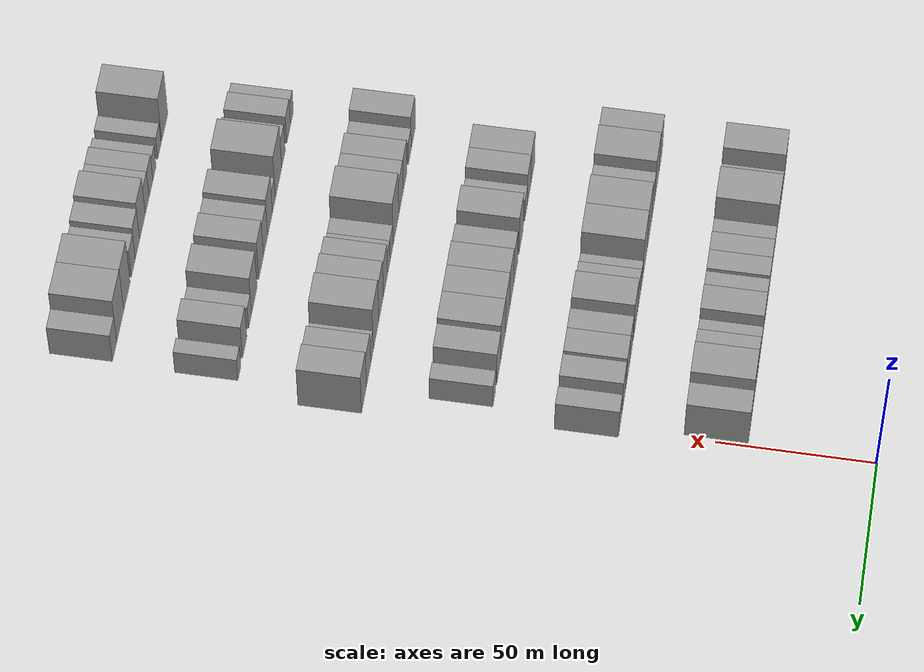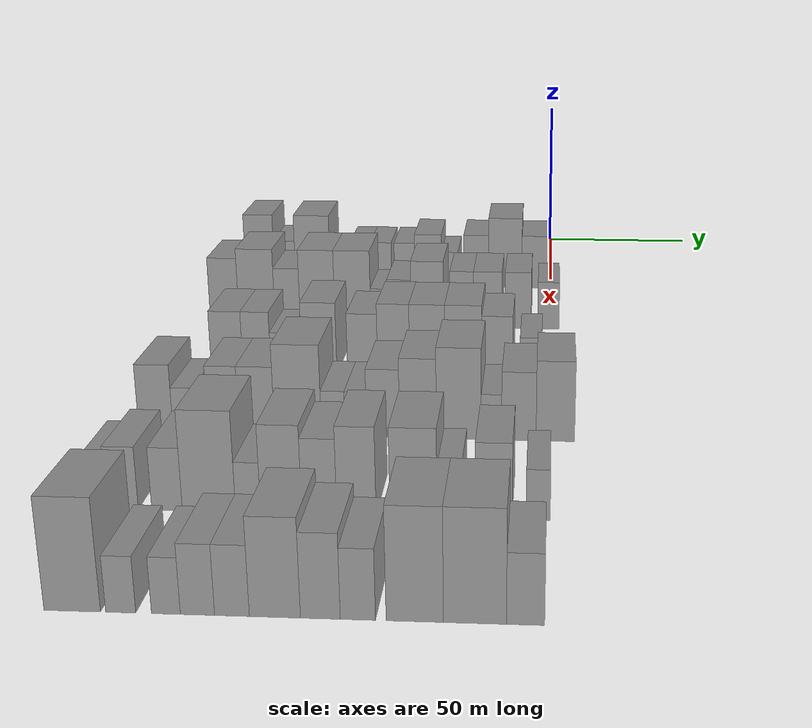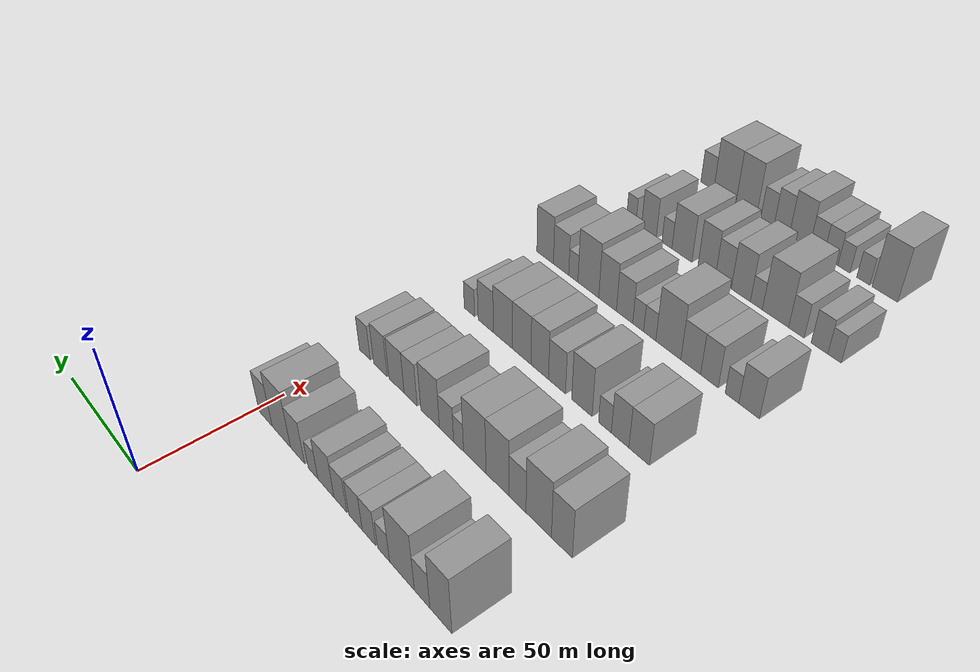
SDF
<sdf version="1.6">
 <world name="default">
  <model name="building_62">
   <static>1</static>
   <pose>50.0000 -98.3167 0 0.000000 0.000000 0.000000</pose>
   <link name="link">
    <pose>0 0 12.00 0 0 0</pose>
    <collision name="collision"><geometry><box><size>20.0000 9.8431 24.0000</size></box></geometry></collision>
    <visual name="visual">
     <cast_shadows>0</cast_shadows>
     <geometry><box><size>20.0000 9.8431 24.0000</size></box></geometry>
     <material>
      <script>
       <uri>model://grey_wall/materials/scripts</uri>
       <uri>model://grey_wall/materials/textures</uri>
       <name>vrc/grey_wall</name>
      </script>
     </material>
    </visual>
   </link>
  </model>
  <model name="building_63">
   <static>1</static>
   <pose>50.0000 -89.8145 0 0.000000 0.000000 0.000000</pose>
   <link name="link">
    <pose>0 0 7.50 0 0 0</pose>
    <collision name="collision"><geometry><box><size>20.0000 7.1614 15.0000</size></box></geometry></collision>
    <visual name="visual">
     <cast_shadows>0</cast_shadows>
     <geometry><box><size>20.0000 7.1614 15.0000</size></box></geometry>
     <material>
      <script>
       <uri>model://grey_wall/materials/scripts</uri>
       <uri>model://grey_wall/materials/textures</uri>
       <name>vrc/grey_wall</name>
      </script>
     </material>
    </visual>
   </link>
  </model>
  <model name="building_64">
   <static>1</static>
   <pose>50.0000 -80.2956 0 0.000000 0.000000 0.000000</pose>
   <link name="link">
    <pose>0 0 12.00 0 0 0</pose>
    <collision name="collision"><geometry><box><size>20.0000 11.8764 24.0000</size></box></geometry></collision>
    <visual name="visual">
     <cast_shadows>0</cast_shadows>
     <geometry><box><size>20.0000 11.8764 24.0000</size></box></geometry>
     <material>
      <script>
       <uri>model://grey_wall/materials/scripts</uri>
       <uri>model://grey_wall/materials/textures</uri>
       <name>vrc/grey_wall</name>
      </script>
     </material>
    </visual>
   </link>
  </model>
  <model name="building_65">
   <static>1</static>
   <pose>50.0000 -71.4141 0 0.000000 0.000000 0.000000</pose>
   <link name="link">
    <pose>0 0 6.00 0 0 0</pose>
    <collision name="collision"><geometry><box><size>20.0000 5.8865 12.0000</size></box></geometry></collision>
    <visual name="visual">
     <cast_shadows>0</cast_shadows>
     <geometry><box><size>20.0000 5.8865 12.0000</size></box></geometry>
     <material>
      <script>
       <uri>model://grey_wall/materials/scripts</uri>
       <uri>model://grey_wall/materials/textures</uri>
       <name>vrc/grey_wall</name>
      </script>
     </material>
    </visual>
   </link>
  </model>
  <model name="building_66">
   <static>1</static>
   <pose>50.0000 -64.0489 0 0.000000 0.000000 0.000000</pose>
   <link name="link">
    <pose>0 0 7.50 0 0 0</pose>
    <collision name="collision"><geometry><box><size>20.0000 6.8438 15.0000</size></box></geometry></collision>
    <visual name="visual">
     <cast_shadows>0</cast_shadows>
     <geometry><box><size>20.0000 6.8438 15.0000</size></box></geometry>
     <material>
      <script>
       <uri>model://grey_wall/materials/scripts</uri>
       <uri>model://grey_wall/materials/textures</uri>
       <name>vrc/grey_wall</name>
      </script>
     </material>
    </visual>
   </link>
  </model>
  <model name="building_67">
   <static>1</static>
   <pose>50.0000 -57.0790 0 0.000000 0.000000 0.000000</pose>
   <link name="link">
    <pose>0 0 7.50 0 0 0</pose>
    <collision name="collision"><geometry><box><size>20.0000 7.0960 15.0000</size></box></geometry></collision>
    <visual name="visual">
     <cast_shadows>0</cast_shadows>
     <geometry><box><size>20.0000 7.0960 15.0000</size></box></geometry>
     <material>
      <script>
       <uri>model://grey_wall/materials/scripts</uri>
       <uri>model://grey_wall/materials/textures</uri>
       <name>vrc/grey_wall</name>
      </script>
     </material>
    </visual>
   </link>
  </model>
  <model name="building_68">
   <static>1</static>
   <pose>50.0000 -49.0764 0 0.000000 0.000000 0.000000</pose>
   <link name="link">
    <pose>0 0 7.50 0 0 0</pose>
    <collision name="collision"><geometry><box><size>20.0000 6.9093 15.0000</size></box></geometry></collision>
    <visual name="visual">
     <cast_shadows>0</cast_shadows>
     <geometry><box><size>20.0000 6.9093 15.0000</size></box></geometry>
     <material>
      <script>
       <uri>model://grey_wall/materials/scripts</uri>
       <uri>model://grey_wall/materials/textures</uri>
       <name>vrc/grey_wall</name>
      </script>
     </material>
    </visual>
   </link>
  </model>
  <model name="building_69">
   <static>1</static>
   <pose>50.0000 -41.1456 0 0.000000 0.000000 0.000000</pose>
   <link name="link">
    <pose>0 0 9.00 0 0 0</pose>
    <collision name="collision"><geometry><box><size>20.0000 8.9523 18.0000</size></box></geometry></collision>
    <visual name="visual">
     <cast_shadows>0</cast_shadows>
     <geometry><box><size>20.0000 8.9523 18.0000</size></box></geometry>
     <material>
      <script>
       <uri>model://grey_wall/materials/scripts</uri>
       <uri>model://grey_wall/materials/textures</uri>
       <name>vrc/grey_wall</name>
      </script>
     </material>
    </visual>
   </link>
  </model>
  <model name="building_70">
   <static>1</static>
   <pose>50.0000 -33.8933 0 0.000000 0.000000 0.000000</pose>
   <link name="link">
    <pose>0 0 6.00 0 0 0</pose>
    <collision name="collision"><geometry><box><size>20.0000 5.5524 12.0000</size></box></geometry></collision>
    <visual name="visual">
     <cast_shadows>0</cast_shadows>
     <geometry><box><size>20.0000 5.5524 12.0000</size></box></geometry>
     <material>
      <script>
       <uri>model://grey_wall/materials/scripts</uri>
       <uri>model://grey_wall/materials/textures</uri>
       <name>vrc/grey_wall</name>
      </script>
     </material>
    </visual>
   </link>
  </model>
  <model name="building_71">
   <static>1</static>
   <pose>50.0000 -24.9443 0 0.000000 0.000000 0.000000</pose>
   <link name="link">
    <pose>0 0 9.00 0 0 0</pose>
    <collision name="collision"><geometry><box><size>20.0000 8.3454 18.0000</size></box></geometry></collision>
    <visual name="visual">
     <cast_shadows>0</cast_shadows>
     <geometry><box><size>20.0000 8.3454 18.0000</size></box></geometry>
     <material>
      <script>
       <uri>model://grey_wall/materials/scripts</uri>
       <uri>model://grey_wall/materials/textures</uri>
       <name>vrc/grey_wall</name>
      </script>
     </material>
    </visual>
   </link>
  </model>
  <model name="building_72">
   <static>1</static>
   <pose>50.0000 -15.2040 0 0.000000 0.000000 0.000000</pose>
   <link name="link">
    <pose>0 0 12.00 0 0 0</pose>
    <collision name="collision"><geometry><box><size>20.0000 11.1353 24.0000</size></box></geometry></collision>
    <visual name="visual">
     <cast_shadows>0</cast_shadows>
     <geometry><box><size>20.0000 11.1353 24.0000</size></box></geometry>
     <material>
      <script>
       <uri>model://grey_wall/materials/scripts</uri>
       <uri>model://grey_wall/materials/textures</uri>
       <name>vrc/grey_wall</name>
      </script>
     </material>
    </visual>
   </link>
  </model>
  <model name="building_73">
   <static>1</static>
   <pose>50.0000 -5.4951 0 0.000000 0.000000 0.000000</pose>
   <link name="link">
    <pose>0 0 9.00 0 0 0</pose>
    <collision name="collision"><geometry><box><size>20.0000 8.2823 18.0000</size></box></geometry></collision>
    <visual name="visual">
     <cast_shadows>0</cast_shadows>
     <geometry><box><size>20.0000 8.2823 18.0000</size></box></geometry>
     <material>
      <script>
       <uri>model://grey_wall/materials/scripts</uri>
       <uri>model://grey_wall/materials/textures</uri>
       <name>vrc/grey_wall</name>
      </script>
     </material>
    </visual>
   </link>
  </model>
  <model name="building_183">
   <static>1</static>
   <pose>90.0000 -100.7036 0 0.000000 0.000000 0.000000</pose>
   <link name="link">
    <pose>0 0 10.50 0 0 0</pose>
    <collision name="collision"><geometry><box><size>20.0000 8.9559 21.0000</size></box></geometry></collision>
    <visual name="visual">
     <cast_shadows>0</cast_shadows>
     <geometry><box><size>20.0000 8.9559 21.0000</size></box></geometry>
     <material>
      <script>
       <uri>model://grey_wall/materials/scripts</uri>
       <uri>model://grey_wall/materials/textures</uri>
       <name>vrc/grey_wall</name>
      </script>
     </material>
    </visual>
   </link>
  </model>
  <model name="building_184">
   <static>1</static>
   <pose>90.0000 -90.5983 0 0.000000 0.000000 0.000000</pose>
   <link name="link">
    <pose>0 0 12.00 0 0 0</pose>
    <collision name="collision"><geometry><box><size>20.0000 11.2547 24.0000</size></box></geometry></collision>
    <visual name="visual">
     <cast_shadows>0</cast_shadows>
     <geometry><box><size>20.0000 11.2547 24.0000</size></box></geometry>
     <material>
      <script>
       <uri>model://grey_wall/materials/scripts</uri>
       <uri>model://grey_wall/materials/textures</uri>
       <name>vrc/grey_wall</name>
      </script>
     </material>
    </visual>
   </link>
  </model>
  <model name="building_185">
   <static>1</static>
   <pose>90.0000 -81.0450 0 0.000000 0.000000 0.000000</pose>
   <link name="link">
    <pose>0 0 9.00 0 0 0</pose>
    <collision name="collision"><geometry><box><size>20.0000 7.8520 18.0000</size></box></geometry></collision>
    <visual name="visual">
     <cast_shadows>0</cast_shadows>
     <geometry><box><size>20.0000 7.8520 18.0000</size></box></geometry>
     <material>
      <script>
       <uri>model://grey_wall/materials/scripts</uri>
       <uri>model://grey_wall/materials/textures</uri>
       <name>vrc/grey_wall</name>
      </script>
     </material>
    </visual>
   </link>
  </model>
  <model name="building_186">
   <static>1</static>
   <pose>90.0000 -71.7139 0 0.000000 0.000000 0.000000</pose>
   <link name="link">
    <pose>0 0 12.00 0 0 0</pose>
    <collision name="collision"><geometry><box><size>20.0000 10.8101 24.0000</size></box></geometry></collision>
    <visual name="visual">
     <cast_shadows>0</cast_shadows>
     <geometry><box><size>20.0000 10.8101 24.0000</size></box></geometry>
     <material>
      <script>
       <uri>model://grey_wall/materials/scripts</uri>
       <uri>model://grey_wall/materials/textures</uri>
       <name>vrc/grey_wall</name>
      </script>
     </material>
    </visual>
   </link>
  </model>
  <model name="building_187">
   <static>1</static>
   <pose>90.0000 -60.7472 0 0.000000 0.000000 0.000000</pose>
   <link name="link">
    <pose>0 0 12.00 0 0 0</pose>
    <collision name="collision"><geometry><box><size>20.0000 11.1233 24.0000</size></box></geometry></collision>
    <visual name="visual">
     <cast_shadows>0</cast_shadows>
     <geometry><box><size>20.0000 11.1233 24.0000</size></box></geometry>
     <material>
      <script>
       <uri>model://grey_wall/materials/scripts</uri>
       <uri>model://grey_wall/materials/textures</uri>
       <name>vrc/grey_wall</name>
      </script>
     </material>
    </visual>
   </link>
  </model>
  <model name="building_188">
   <static>1</static>
   <pose>90.0000 -52.6502 0 0.000000 0.000000 0.000000</pose>
   <link name="link">
    <pose>0 0 6.00 0 0 0</pose>
    <collision name="collision"><geometry><box><size>20.0000 5.0707 12.0000</size></box></geometry></collision>
    <visual name="visual">
     <cast_shadows>0</cast_shadows>
     <geometry><box><size>20.0000 5.0707 12.0000</size></box></geometry>
     <material>
      <script>
       <uri>model://grey_wall/materials/scripts</uri>
       <uri>model://grey_wall/materials/textures</uri>
       <name>vrc/grey_wall</name>
      </script>
     </material>
    </visual>
   </link>
  </model>
  <model name="building_189">
   <static>1</static>
   <pose>90.0000 -46.4195 0 0.000000 0.000000 0.000000</pose>
   <link name="link">
    <pose>0 0 7.50 0 0 0</pose>
    <collision name="collision"><geometry><box><size>20.0000 7.3907 15.0000</size></box></geometry></collision>
    <visual name="visual">
     <cast_shadows>0</cast_shadows>
     <geometry><box><size>20.0000 7.3907 15.0000</size></box></geometry>
     <material>
      <script>
       <uri>model://grey_wall/materials/scripts</uri>
       <uri>model://grey_wall/materials/textures</uri>
       <name>vrc/grey_wall</name>
      </script>
     </material>
    </visual>
   </link>
  </model>
  <model name="building_190">
   <static>1</static>
   <pose>90.0000 -37.7463 0 0.000000 0.000000 0.000000</pose>
   <link name="link">
    <pose>0 0 10.50 0 0 0</pose>
    <collision name="collision"><geometry><box><size>20.0000 9.9557 21.0000</size></box></geometry></collision>
    <visual name="visual">
     <cast_shadows>0</cast_shadows>
     <geometry><box><size>20.0000 9.9557 21.0000</size></box></geometry>
     <material>
      <script>
       <uri>model://grey_wall/materials/scripts</uri>
       <uri>model://grey_wall/materials/textures</uri>
       <name>vrc/grey_wall</name>
      </script>
     </material>
    </visual>
   </link>
  </model>
  <model name="building_191">
   <static>1</static>
   <pose>90.0000 -27.1529 0 0.000000 0.000000 0.000000</pose>
   <link name="link">
    <pose>0 0 9.00 0 0 0</pose>
    <collision name="collision"><geometry><box><size>20.0000 7.2310 18.0000</size></box></geometry></collision>
    <visual name="visual">
     <cast_shadows>0</cast_shadows>
     <geometry><box><size>20.0000 7.2310 18.0000</size></box></geometry>
     <material>
      <script>
       <uri>model://grey_wall/materials/scripts</uri>
       <uri>model://grey_wall/materials/textures</uri>
       <name>vrc/grey_wall</name>
      </script>
     </material>
    </visual>
   </link>
  </model>
  <model name="building_192">
   <static>1</static>
   <pose>90.0000 -19.2279 0 0.000000 0.000000 0.000000</pose>
   <link name="link">
    <pose>0 0 9.00 0 0 0</pose>
    <collision name="collision"><geometry><box><size>20.0000 8.6189 18.0000</size></box></geometry></collision>
    <visual name="visual">
     <cast_shadows>0</cast_shadows>
     <geometry><box><size>20.0000 8.6189 18.0000</size></box></geometry>
     <material>
      <script>
       <uri>model://grey_wall/materials/scripts</uri>
       <uri>model://grey_wall/materials/textures</uri>
       <name>vrc/grey_wall</name>
      </script>
     </material>
    </visual>
   </link>
  </model>
  <model name="building_193">
   <static>1</static>
   <pose>90.0000 -9.9222 0 0.000000 0.000000 0.000000</pose>
   <link name="link">
    <pose>0 0 9.00 0 0 0</pose>
    <collision name="collision"><geometry><box><size>20.0000 7.9925 18.0000</size></box></geometry></collision>
    <visual name="visual">
     <cast_shadows>0</cast_shadows>
     <geometry><box><size>20.0000 7.9925 18.0000</size></box></geometry>
     <material>
      <script>
       <uri>model://grey_wall/materials/scripts</uri>
       <uri>model://grey_wall/materials/textures</uri>
       <name>vrc/grey_wall</name>
      </script>
     </material>
    </visual>
   </link>
  </model>
  <model name="building_194">
   <static>1</static>
   <pose>90.0000 -0.6601 0 0.000000 0.000000 0.000000</pose>
   <link name="link">
    <pose>0 0 7.50 0 0 0</pose>
    <collision name="collision"><geometry><box><size>20.0000 6.5317 15.0000</size></box></geometry></collision>
    <visual name="visual">
     <cast_shadows>0</cast_shadows>
     <geometry><box><size>20.0000 6.5317 15.0000</size></box></geometry>
     <material>
      <script>
       <uri>model://grey_wall/materials/scripts</uri>
       <uri>model://grey_wall/materials/textures</uri>
       <name>vrc/grey_wall</name>
      </script>
     </material>
    </visual>
   </link>
  </model>
  <model name="building_322">
   <static>1</static>
   <pose>130.0000 -90.1166 0 0.000000 0.000000 0.000000</pose>
   <link name="link">
    <pose>0 0 9.00 0 0 0</pose>
    <collision name="collision"><geometry><box><size>20.0000 8.9452 18.0000</size></box></geometry></collision>
    <visual name="visual">
     <cast_shadows>0</cast_shadows>
     <geometry><box><size>20.0000 8.9452 18.0000</size></box></geometry>
     <material>
      <script>
       <uri>model://grey_wall/materials/scripts</uri>
       <uri>model://grey_wall/materials/textures</uri>
       <name>vrc/grey_wall</name>
      </script>
     </material>
    </visual>
   </link>
  </model>
  <model name="building_323">
   <static>1</static>
   <pose>130.0000 -81.7169 0 0.000000 0.000000 0.000000</pose>
   <link name="link">
    <pose>0 0 9.00 0 0 0</pose>
    <collision name="collision"><geometry><box><size>20.0000 7.8541 18.0000</size></box></geometry></collision>
    <visual name="visual">
     <cast_shadows>0</cast_shadows>
     <geometry><box><size>20.0000 7.8541 18.0000</size></box></geometry>
     <material>
      <script>
       <uri>model://grey_wall/materials/scripts</uri>
       <uri>model://grey_wall/materials/textures</uri>
       <name>vrc/grey_wall</name>
      </script>
     </material>
    </visual>
   </link>
  </model>
  <model name="building_324">
   <static>1</static>
   <pose>130.0000 -74.8792 0 0.000000 0.000000 0.000000</pose>
   <link name="link">
    <pose>0 0 6.00 0 0 0</pose>
    <collision name="collision"><geometry><box><size>20.0000 5.8214 12.0000</size></box></geometry></collision>
    <visual name="visual">
     <cast_shadows>0</cast_shadows>
     <geometry><box><size>20.0000 5.8214 12.0000</size></box></geometry>
     <material>
      <script>
       <uri>model://grey_wall/materials/scripts</uri>
       <uri>model://grey_wall/materials/textures</uri>
       <name>vrc/grey_wall</name>
      </script>
     </material>
    </visual>
   </link>
  </model>
  <model name="building_325">
   <static>1</static>
   <pose>130.0000 -64.1117 0 0.000000 0.000000 0.000000</pose>
   <link name="link">
    <pose>0 0 10.50 0 0 0</pose>
    <collision name="collision"><geometry><box><size>20.0000 9.7136 21.0000</size></box></geometry></collision>
    <visual name="visual">
     <cast_shadows>0</cast_shadows>
     <geometry><box><size>20.0000 9.7136 21.0000</size></box></geometry>
     <material>
      <script>
       <uri>model://grey_wall/materials/scripts</uri>
       <uri>model://grey_wall/materials/textures</uri>
       <name>vrc/grey_wall</name>
      </script>
     </material>
    </visual>
   </link>
  </model>
  <model name="building_326">
   <static>1</static>
   <pose>130.0000 -52.0515 0 0.000000 0.000000 0.000000</pose>
   <link name="link">
    <pose>0 0 9.00 0 0 0</pose>
    <collision name="collision"><geometry><box><size>20.0000 8.4068 18.0000</size></box></geometry></collision>
    <visual name="visual">
     <cast_shadows>0</cast_shadows>
     <geometry><box><size>20.0000 8.4068 18.0000</size></box></geometry>
     <material>
      <script>
       <uri>model://grey_wall/materials/scripts</uri>
       <uri>model://grey_wall/materials/textures</uri>
       <name>vrc/grey_wall</name>
      </script>
     </material>
    </visual>
   </link>
  </model>
  <model name="building_327">
   <static>1</static>
   <pose>130.0000 -43.3922 0 0.000000 0.000000 0.000000</pose>
   <link name="link">
    <pose>0 0 10.50 0 0 0</pose>
    <collision name="collision"><geometry><box><size>20.0000 8.9118 21.0000</size></box></geometry></collision>
    <visual name="visual">
     <cast_shadows>0</cast_shadows>
     <geometry><box><size>20.0000 8.9118 21.0000</size></box></geometry>
     <material>
      <script>
       <uri>model://grey_wall/materials/scripts</uri>
       <uri>model://grey_wall/materials/textures</uri>
       <name>vrc/grey_wall</name>
      </script>
     </material>
    </visual>
   </link>
  </model>
  <model name="building_328">
   <static>1</static>
   <pose>130.0000 -34.0581 0 0.000000 0.000000 0.000000</pose>
   <link name="link">
    <pose>0 0 10.50 0 0 0</pose>
    <collision name="collision"><geometry><box><size>20.0000 9.7564 21.0000</size></box></geometry></collision>
    <visual name="visual">
     <cast_shadows>0</cast_shadows>
     <geometry><box><size>20.0000 9.7564 21.0000</size></box></geometry>
     <material>
      <script>
       <uri>model://grey_wall/materials/scripts</uri>
       <uri>model://grey_wall/materials/textures</uri>
       <name>vrc/grey_wall</name>
      </script>
     </material>
    </visual>
   </link>
  </model>
  <model name="building_329">
   <static>1</static>
   <pose>130.0000 -24.0826 0 0.000000 0.000000 0.000000</pose>
   <link name="link">
    <pose>0 0 10.50 0 0 0</pose>
    <collision name="collision"><geometry><box><size>20.0000 10.1948 21.0000</size></box></geometry></collision>
    <visual name="visual">
     <cast_shadows>0</cast_shadows>
     <geometry><box><size>20.0000 10.1948 21.0000</size></box></geometry>
     <material>
      <script>
       <uri>model://grey_wall/materials/scripts</uri>
       <uri>model://grey_wall/materials/textures</uri>
       <name>vrc/grey_wall</name>
      </script>
     </material>
    </visual>
   </link>
  </model>
  <model name="building_330">
   <static>1</static>
   <pose>130.0000 -14.7041 0 0.000000 0.000000 0.000000</pose>
   <link name="link">
    <pose>0 0 9.00 0 0 0</pose>
    <collision name="collision"><geometry><box><size>20.0000 8.5621 18.0000</size></box></geometry></collision>
    <visual name="visual">
     <cast_shadows>0</cast_shadows>
     <geometry><box><size>20.0000 8.5621 18.0000</size></box></geometry>
     <material>
      <script>
       <uri>model://grey_wall/materials/scripts</uri>
       <uri>model://grey_wall/materials/textures</uri>
       <name>vrc/grey_wall</name>
      </script>
     </material>
    </visual>
   </link>
  </model>
  <model name="building_331">
   <static>1</static>
   <pose>130.0000 -5.4510 0 0.000000 0.000000 0.000000</pose>
   <link name="link">
    <pose>0 0 6.00 0 0 0</pose>
    <collision name="collision"><geometry><box><size>20.0000 5.9441 12.0000</size></box></geometry></collision>
    <visual name="visual">
     <cast_shadows>0</cast_shadows>
     <geometry><box><size>20.0000 5.9441 12.0000</size></box></geometry>
     <material>
      <script>
       <uri>model://grey_wall/materials/scripts</uri>
       <uri>model://grey_wall/materials/textures</uri>
       <name>vrc/grey_wall</name>
      </script>
     </material>
    </visual>
   </link>
  </model>
  <model name="building_461">
   <static>1</static>
   <pose>170.0000 -98.3175 0 0.000000 0.000000 0.000000</pose>
   <link name="link">
    <pose>0 0 9.00 0 0 0</pose>
    <collision name="collision"><geometry><box><size>20.0000 8.6673 18.0000</size></box></geometry></collision>
    <visual name="visual">
     <cast_shadows>0</cast_shadows>
     <geometry><box><size>20.0000 8.6673 18.0000</size></box></geometry>
     <material>
      <script>
       <uri>model://grey_wall/materials/scripts</uri>
       <uri>model://grey_wall/materials/textures</uri>
       <name>vrc/grey_wall</name>
      </script>
     </material>
    </visual>
   </link>
  </model>
  <model name="building_462">
   <static>1</static>
   <pose>170.0000 -91.0740 0 0.000000 0.000000 0.000000</pose>
   <link name="link">
    <pose>0 0 6.00 0 0 0</pose>
    <collision name="collision"><geometry><box><size>20.0000 5.8197 12.0000</size></box></geometry></collision>
    <visual name="visual">
     <cast_shadows>0</cast_shadows>
     <geometry><box><size>20.0000 5.8197 12.0000</size></box></geometry>
     <material>
      <script>
       <uri>model://grey_wall/materials/scripts</uri>
       <uri>model://grey_wall/materials/textures</uri>
       <name>vrc/grey_wall</name>
      </script>
     </material>
    </visual>
   </link>
  </model>
  <model name="building_463">
   <static>1</static>
   <pose>170.0000 -81.2610 0 0.000000 0.000000 0.000000</pose>
   <link name="link">
    <pose>0 0 9.00 0 0 0</pose>
    <collision name="collision"><geometry><box><size>20.0000 7.8064 18.0000</size></box></geometry></collision>
    <visual name="visual">
     <cast_shadows>0</cast_shadows>
     <geometry><box><size>20.0000 7.8064 18.0000</size></box></geometry>
     <material>
      <script>
       <uri>model://grey_wall/materials/scripts</uri>
       <uri>model://grey_wall/materials/textures</uri>
       <name>vrc/grey_wall</name>
      </script>
     </material>
    </visual>
   </link>
  </model>
  <model name="building_464">
   <static>1</static>
   <pose>170.0000 -72.8683 0 0.000000 0.000000 0.000000</pose>
   <link name="link">
    <pose>0 0 9.00 0 0 0</pose>
    <collision name="collision"><geometry><box><size>20.0000 8.9790 18.0000</size></box></geometry></collision>
    <visual name="visual">
     <cast_shadows>0</cast_shadows>
     <geometry><box><size>20.0000 8.9790 18.0000</size></box></geometry>
     <material>
      <script>
       <uri>model://grey_wall/materials/scripts</uri>
       <uri>model://grey_wall/materials/textures</uri>
       <name>vrc/grey_wall</name>
      </script>
     </material>
    </visual>
   </link>
  </model>
  <model name="building_465">
   <static>1</static>
   <pose>170.0000 -62.5123 0 0.000000 0.000000 0.000000</pose>
   <link name="link">
    <pose>0 0 12.00 0 0 0</pose>
    <collision name="collision"><geometry><box><size>20.0000 11.7331 24.0000</size></box></geometry></collision>
    <visual name="visual">
     <cast_shadows>0</cast_shadows>
     <geometry><box><size>20.0000 11.7331 24.0000</size></box></geometry>
     <material>
      <script>
       <uri>model://grey_wall/materials/scripts</uri>
       <uri>model://grey_wall/materials/textures</uri>
       <name>vrc/grey_wall</name>
      </script>
     </material>
    </visual>
   </link>
  </model>
  <model name="building_466">
   <static>1</static>
   <pose>170.0000 -53.6849 0 0.000000 0.000000 0.000000</pose>
   <link name="link">
    <pose>0 0 6.00 0 0 0</pose>
    <collision name="collision"><geometry><box><size>20.0000 5.9217 12.0000</size></box></geometry></collision>
    <visual name="visual">
     <cast_shadows>0</cast_shadows>
     <geometry><box><size>20.0000 5.9217 12.0000</size></box></geometry>
     <material>
      <script>
       <uri>model://grey_wall/materials/scripts</uri>
       <uri>model://grey_wall/materials/textures</uri>
       <name>vrc/grey_wall</name>
      </script>
     </material>
    </visual>
   </link>
  </model>
  <model name="building_467">
   <static>1</static>
   <pose>170.0000 -48.0506 0 0.000000 0.000000 0.000000</pose>
   <link name="link">
    <pose>0 0 6.00 0 0 0</pose>
    <collision name="collision"><geometry><box><size>20.0000 5.3470 12.0000</size></box></geometry></collision>
    <visual name="visual">
     <cast_shadows>0</cast_shadows>
     <geometry><box><size>20.0000 5.3470 12.0000</size></box></geometry>
     <material>
      <script>
       <uri>model://grey_wall/materials/scripts</uri>
       <uri>model://grey_wall/materials/textures</uri>
       <name>vrc/grey_wall</name>
      </script>
     </material>
    </visual>
   </link>
  </model>
  <model name="building_468">
   <static>1</static>
   <pose>170.0000 -41.2796 0 0.000000 0.000000 0.000000</pose>
   <link name="link">
    <pose>0 0 9.00 0 0 0</pose>
    <collision name="collision"><geometry><box><size>20.0000 8.1951 18.0000</size></box></geometry></collision>
    <visual name="visual">
     <cast_shadows>0</cast_shadows>
     <geometry><box><size>20.0000 8.1951 18.0000</size></box></geometry>
     <material>
      <script>
       <uri>model://grey_wall/materials/scripts</uri>
       <uri>model://grey_wall/materials/textures</uri>
       <name>vrc/grey_wall</name>
      </script>
     </material>
    </visual>
   </link>
  </model>
  <model name="building_469">
   <static>1</static>
   <pose>170.0000 -32.6283 0 0.000000 0.000000 0.000000</pose>
   <link name="link">
    <pose>0 0 10.50 0 0 0</pose>
    <collision name="collision"><geometry><box><size>20.0000 9.1075 21.0000</size></box></geometry></collision>
    <visual name="visual">
     <cast_shadows>0</cast_shadows>
     <geometry><box><size>20.0000 9.1075 21.0000</size></box></geometry>
     <material>
      <script>
       <uri>model://grey_wall/materials/scripts</uri>
       <uri>model://grey_wall/materials/textures</uri>
       <name>vrc/grey_wall</name>
      </script>
     </material>
    </visual>
   </link>
  </model>
  <model name="building_470">
   <static>1</static>
   <pose>170.0000 -22.5432 0 0.000000 0.000000 0.000000</pose>
   <link name="link">
    <pose>0 0 12.00 0 0 0</pose>
    <collision name="collision"><geometry><box><size>20.0000 11.0627 24.0000</size></box></geometry></collision>
    <visual name="visual">
     <cast_shadows>0</cast_shadows>
     <geometry><box><size>20.0000 11.0627 24.0000</size></box></geometry>
     <material>
      <script>
       <uri>model://grey_wall/materials/scripts</uri>
       <uri>model://grey_wall/materials/textures</uri>
       <name>vrc/grey_wall</name>
      </script>
     </material>
    </visual>
   </link>
  </model>
  <model name="building_471">
   <static>1</static>
   <pose>170.0000 -14.5097 0 0.000000 0.000000 0.000000</pose>
   <link name="link">
    <pose>0 0 6.00 0 0 0</pose>
    <collision name="collision"><geometry><box><size>20.0000 5.0042 12.0000</size></box></geometry></collision>
    <visual name="visual">
     <cast_shadows>0</cast_shadows>
     <geometry><box><size>20.0000 5.0042 12.0000</size></box></geometry>
     <material>
      <script>
       <uri>model://grey_wall/materials/scripts</uri>
       <uri>model://grey_wall/materials/textures</uri>
       <name>vrc/grey_wall</name>
      </script>
     </material>
    </visual>
   </link>
  </model>
  <model name="building_472">
   <static>1</static>
   <pose>170.0000 -7.7640 0 0.000000 0.000000 0.000000</pose>
   <link name="link">
    <pose>0 0 9.00 0 0 0</pose>
    <collision name="collision"><geometry><box><size>20.0000 8.4873 18.0000</size></box></geometry></collision>
    <visual name="visual">
     <cast_shadows>0</cast_shadows>
     <geometry><box><size>20.0000 8.4873 18.0000</size></box></geometry>
     <material>
      <script>
       <uri>model://grey_wall/materials/scripts</uri>
       <uri>model://grey_wall/materials/textures</uri>
       <name>vrc/grey_wall</name>
      </script>
     </material>
    </visual>
   </link>
  </model>
  <model name="building_473">
   <static>1</static>
   <pose>170.0000 1.1938 0 0.000000 0.000000 0.000000</pose>
   <link name="link">
    <pose>0 0 10.50 0 0 0</pose>
    <collision name="collision"><geometry><box><size>20.0000 9.4282 21.0000</size></box></geometry></collision>
    <visual name="visual">
     <cast_shadows>0</cast_shadows>
     <geometry><box><size>20.0000 9.4282 21.0000</size></box></geometry>
     <material>
      <script>
       <uri>model://grey_wall/materials/scripts</uri>
       <uri>model://grey_wall/materials/textures</uri>
       <name>vrc/grey_wall</name>
      </script>
     </material>
    </visual>
   </link>
  </model>
  <model name="building_605">
   <static>1</static>
   <pose>210.0000 -100.0345 0 0.000000 0.000000 0.000000</pose>
   <link name="link">
    <pose>0 0 6.00 0 0 0</pose>
    <collision name="collision"><geometry><box><size>20.0000 5.5565 12.0000</size></box></geometry></collision>
    <visual name="visual">
     <cast_shadows>0</cast_shadows>
     <geometry><box><size>20.0000 5.5565 12.0000</size></box></geometry>
     <material>
      <script>
       <uri>model://grey_wall/materials/scripts</uri>
       <uri>model://grey_wall/materials/textures</uri>
       <name>vrc/grey_wall</name>
      </script>
     </material>
    </visual>
   </link>
  </model>
  <model name="building_606">
   <static>1</static>
   <pose>210.0000 -93.7426 0 0.000000 0.000000 0.000000</pose>
   <link name="link">
    <pose>0 0 7.50 0 0 0</pose>
    <collision name="collision"><geometry><box><size>20.0000 7.0271 15.0000</size></box></geometry></collision>
    <visual name="visual">
     <cast_shadows>0</cast_shadows>
     <geometry><box><size>20.0000 7.0271 15.0000</size></box></geometry>
     <material>
      <script>
       <uri>model://grey_wall/materials/scripts</uri>
       <uri>model://grey_wall/materials/textures</uri>
       <name>vrc/grey_wall</name>
      </script>
     </material>
    </visual>
   </link>
  </model>
  <model name="building_607">
   <static>1</static>
   <pose>210.0000 -83.8296 0 0.000000 0.000000 0.000000</pose>
   <link name="link">
    <pose>0 0 7.50 0 0 0</pose>
    <collision name="collision"><geometry><box><size>20.0000 6.7990 15.0000</size></box></geometry></collision>
    <visual name="visual">
     <cast_shadows>0</cast_shadows>
     <geometry><box><size>20.0000 6.7990 15.0000</size></box></geometry>
     <material>
      <script>
       <uri>model://grey_wall/materials/scripts</uri>
       <uri>model://grey_wall/materials/textures</uri>
       <name>vrc/grey_wall</name>
      </script>
     </material>
    </visual>
   </link>
  </model>
  <model name="building_608">
   <static>1</static>
   <pose>210.0000 -74.5330 0 0.000000 0.000000 0.000000</pose>
   <link name="link">
    <pose>0 0 12.00 0 0 0</pose>
    <collision name="collision"><geometry><box><size>20.0000 11.7941 24.0000</size></box></geometry></collision>
    <visual name="visual">
     <cast_shadows>0</cast_shadows>
     <geometry><box><size>20.0000 11.7941 24.0000</size></box></geometry>
     <material>
      <script>
       <uri>model://grey_wall/materials/scripts</uri>
       <uri>model://grey_wall/materials/textures</uri>
       <name>vrc/grey_wall</name>
      </script>
     </material>
    </visual>
   </link>
  </model>
  <model name="building_609">
   <static>1</static>
   <pose>210.0000 -65.8726 0 0.000000 0.000000 0.000000</pose>
   <link name="link">
    <pose>0 0 6.00 0 0 0</pose>
    <collision name="collision"><geometry><box><size>20.0000 5.5268 12.0000</size></box></geometry></collision>
    <visual name="visual">
     <cast_shadows>0</cast_shadows>
     <geometry><box><size>20.0000 5.5268 12.0000</size></box></geometry>
     <material>
      <script>
       <uri>model://grey_wall/materials/scripts</uri>
       <uri>model://grey_wall/materials/textures</uri>
       <name>vrc/grey_wall</name>
      </script>
     </material>
    </visual>
   </link>
  </model>
  <model name="building_610">
   <static>1</static>
   <pose>210.0000 -58.5884 0 0.000000 0.000000 0.000000</pose>
   <link name="link">
    <pose>0 0 10.50 0 0 0</pose>
    <collision name="collision"><geometry><box><size>20.0000 9.0417 21.0000</size></box></geometry></collision>
    <visual name="visual">
     <cast_shadows>0</cast_shadows>
     <geometry><box><size>20.0000 9.0417 21.0000</size></box></geometry>
     <material>
      <script>
       <uri>model://grey_wall/materials/scripts</uri>
       <uri>model://grey_wall/materials/textures</uri>
       <name>vrc/grey_wall</name>
      </script>
     </material>
    </visual>
   </link>
  </model>
  <model name="building_611">
   <static>1</static>
   <pose>210.0000 -50.2196 0 0.000000 0.000000 0.000000</pose>
   <link name="link">
    <pose>0 0 9.00 0 0 0</pose>
    <collision name="collision"><geometry><box><size>20.0000 7.6959 18.0000</size></box></geometry></collision>
    <visual name="visual">
     <cast_shadows>0</cast_shadows>
     <geometry><box><size>20.0000 7.6959 18.0000</size></box></geometry>
     <material>
      <script>
       <uri>model://grey_wall/materials/scripts</uri>
       <uri>model://grey_wall/materials/textures</uri>
       <name>vrc/grey_wall</name>
      </script>
     </material>
    </visual>
   </link>
  </model>
  <model name="building_612">
   <static>1</static>
   <pose>210.0000 -42.0685 0 0.000000 0.000000 0.000000</pose>
   <link name="link">
    <pose>0 0 10.50 0 0 0</pose>
    <collision name="collision"><geometry><box><size>20.0000 8.6064 21.0000</size></box></geometry></collision>
    <visual name="visual">
     <cast_shadows>0</cast_shadows>
     <geometry><box><size>20.0000 8.6064 21.0000</size></box></geometry>
     <material>
      <script>
       <uri>model://grey_wall/materials/scripts</uri>
       <uri>model://grey_wall/materials/textures</uri>
       <name>vrc/grey_wall</name>
      </script>
     </material>
    </visual>
   </link>
  </model>
  <model name="building_613">
   <static>1</static>
   <pose>210.0000 -29.6342 0 0.000000 0.000000 0.000000</pose>
   <link name="link">
    <pose>0 0 10.50 0 0 0</pose>
    <collision name="collision"><geometry><box><size>20.0000 10.2623 21.0000</size></box></geometry></collision>
    <visual name="visual">
     <cast_shadows>0</cast_shadows>
     <geometry><box><size>20.0000 10.2623 21.0000</size></box></geometry>
     <material>
      <script>
       <uri>model://grey_wall/materials/scripts</uri>
       <uri>model://grey_wall/materials/textures</uri>
       <name>vrc/grey_wall</name>
      </script>
     </material>
    </visual>
   </link>
  </model>
  <model name="building_614">
   <static>1</static>
   <pose>210.0000 -21.8707 0 0.000000 0.000000 0.000000</pose>
   <link name="link">
    <pose>0 0 6.00 0 0 0</pose>
    <collision name="collision"><geometry><box><size>20.0000 5.2645 12.0000</size></box></geometry></collision>
    <visual name="visual">
     <cast_shadows>0</cast_shadows>
     <geometry><box><size>20.0000 5.2645 12.0000</size></box></geometry>
     <material>
      <script>
       <uri>model://grey_wall/materials/scripts</uri>
       <uri>model://grey_wall/materials/textures</uri>
       <name>vrc/grey_wall</name>
      </script>
     </material>
    </visual>
   </link>
  </model>
  <model name="building_615">
   <static>1</static>
   <pose>210.0000 -12.2380 0 0.000000 0.000000 0.000000</pose>
   <link name="link">
    <pose>0 0 9.00 0 0 0</pose>
    <collision name="collision"><geometry><box><size>20.0000 8.0008 18.0000</size></box></geometry></collision>
    <visual name="visual">
     <cast_shadows>0</cast_shadows>
     <geometry><box><size>20.0000 8.0008 18.0000</size></box></geometry>
     <material>
      <script>
       <uri>model://grey_wall/materials/scripts</uri>
       <uri>model://grey_wall/materials/textures</uri>
       <name>vrc/grey_wall</name>
      </script>
     </material>
    </visual>
   </link>
  </model>
  <model name="building_616">
   <static>1</static>
   <pose>210.0000 -2.6437 0 0.000000 0.000000 0.000000</pose>
   <link name="link">
    <pose>0 0 6.00 0 0 0</pose>
    <collision name="collision"><geometry><box><size>20.0000 5.1878 12.0000</size></box></geometry></collision>
    <visual name="visual">
     <cast_shadows>0</cast_shadows>
     <geometry><box><size>20.0000 5.1878 12.0000</size></box></geometry>
     <material>
      <script>
       <uri>model://grey_wall/materials/scripts</uri>
       <uri>model://grey_wall/materials/textures</uri>
       <name>vrc/grey_wall</name>
      </script>
     </material>
    </visual>
   </link>
  </model>
  <model name="building_748">
   <static>1</static>
   <pose>250.0000 -90.3568 0 0.000000 0.000000 0.000000</pose>
   <link name="link">
    <pose>0 0 12.00 0 0 0</pose>
    <collision name="collision"><geometry><box><size>20.0000 10.8896 24.0000</size></box></geometry></collision>
    <visual name="visual">
     <cast_shadows>0</cast_shadows>
     <geometry><box><size>20.0000 10.8896 24.0000</size></box></geometry>
     <material>
      <script>
       <uri>model://grey_wall/materials/scripts</uri>
       <uri>model://grey_wall/materials/textures</uri>
       <name>vrc/grey_wall</name>
      </script>
     </material>
    </visual>
   </link>
  </model>
  <model name="building_749">
   <static>1</static>
   <pose>250.0000 -81.0225 0 0.000000 0.000000 0.000000</pose>
   <link name="link">
    <pose>0 0 6.00 0 0 0</pose>
    <collision name="collision"><geometry><box><size>20.0000 5.7790 12.0000</size></box></geometry></collision>
    <visual name="visual">
     <cast_shadows>0</cast_shadows>
     <geometry><box><size>20.0000 5.7790 12.0000</size></box></geometry>
     <material>
      <script>
       <uri>model://grey_wall/materials/scripts</uri>
       <uri>model://grey_wall/materials/textures</uri>
       <name>vrc/grey_wall</name>
      </script>
     </material>
    </visual>
   </link>
  </model>
  <model name="building_750">
   <static>1</static>
   <pose>250.0000 -72.3734 0 0.000000 0.000000 0.000000</pose>
   <link name="link">
    <pose>0 0 6.00 0 0 0</pose>
    <collision name="collision"><geometry><box><size>20.0000 5.5191 12.0000</size></box></geometry></collision>
    <visual name="visual">
     <cast_shadows>0</cast_shadows>
     <geometry><box><size>20.0000 5.5191 12.0000</size></box></geometry>
     <material>
      <script>
       <uri>model://grey_wall/materials/scripts</uri>
       <uri>model://grey_wall/materials/textures</uri>
       <name>vrc/grey_wall</name>
      </script>
     </material>
    </visual>
   </link>
  </model>
  <model name="building_751">
   <static>1</static>
   <pose>250.0000 -66.3429 0 0.000000 0.000000 0.000000</pose>
   <link name="link">
    <pose>0 0 7.50 0 0 0</pose>
    <collision name="collision"><geometry><box><size>20.0000 6.5420 15.0000</size></box></geometry></collision>
    <visual name="visual">
     <cast_shadows>0</cast_shadows>
     <geometry><box><size>20.0000 6.5420 15.0000</size></box></geometry>
     <material>
      <script>
       <uri>model://grey_wall/materials/scripts</uri>
       <uri>model://grey_wall/materials/textures</uri>
       <name>vrc/grey_wall</name>
      </script>
     </material>
    </visual>
   </link>
  </model>
  <model name="building_752">
   <static>1</static>
   <pose>250.0000 -59.7708 0 0.000000 0.000000 0.000000</pose>
   <link name="link">
    <pose>0 0 7.50 0 0 0</pose>
    <collision name="collision"><geometry><box><size>20.0000 6.6023 15.0000</size></box></geometry></collision>
    <visual name="visual">
     <cast_shadows>0</cast_shadows>
     <geometry><box><size>20.0000 6.6023 15.0000</size></box></geometry>
     <material>
      <script>
       <uri>model://grey_wall/materials/scripts</uri>
       <uri>model://grey_wall/materials/textures</uri>
       <name>vrc/grey_wall</name>
      </script>
     </material>
    </visual>
   </link>
  </model>
  <model name="building_753">
   <static>1</static>
   <pose>250.0000 -51.6253 0 0.000000 0.000000 0.000000</pose>
   <link name="link">
    <pose>0 0 10.50 0 0 0</pose>
    <collision name="collision"><geometry><box><size>20.0000 9.6887 21.0000</size></box></geometry></collision>
    <visual name="visual">
     <cast_shadows>0</cast_shadows>
     <geometry><box><size>20.0000 9.6887 21.0000</size></box></geometry>
     <material>
      <script>
       <uri>model://grey_wall/materials/scripts</uri>
       <uri>model://grey_wall/materials/textures</uri>
       <name>vrc/grey_wall</name>
      </script>
     </material>
    </visual>
   </link>
  </model>
  <model name="building_754">
   <static>1</static>
   <pose>250.0000 -43.0184 0 0.000000 0.000000 0.000000</pose>
   <link name="link">
    <pose>0 0 9.00 0 0 0</pose>
    <collision name="collision"><geometry><box><size>20.0000 7.5250 18.0000</size></box></geometry></collision>
    <visual name="visual">
     <cast_shadows>0</cast_shadows>
     <geometry><box><size>20.0000 7.5250 18.0000</size></box></geometry>
     <material>
      <script>
       <uri>model://grey_wall/materials/scripts</uri>
       <uri>model://grey_wall/materials/textures</uri>
       <name>vrc/grey_wall</name>
      </script>
     </material>
    </visual>
   </link>
  </model>
  <model name="building_755">
   <static>1</static>
   <pose>250.0000 -35.9417 0 0.000000 0.000000 0.000000</pose>
   <link name="link">
    <pose>0 0 7.50 0 0 0</pose>
    <collision name="collision"><geometry><box><size>20.0000 6.6283 15.0000</size></box></geometry></collision>
    <visual name="visual">
     <cast_shadows>0</cast_shadows>
     <geometry><box><size>20.0000 6.6283 15.0000</size></box></geometry>
     <material>
      <script>
       <uri>model://grey_wall/materials/scripts</uri>
       <uri>model://grey_wall/materials/textures</uri>
       <name>vrc/grey_wall</name>
      </script>
     </material>
    </visual>
   </link>
  </model>
  <model name="building_756">
   <static>1</static>
   <pose>250.0000 -25.2599 0 0.000000 0.000000 0.000000</pose>
   <link name="link">
    <pose>0 0 12.00 0 0 0</pose>
    <collision name="collision"><geometry><box><size>20.0000 10.7353 24.0000</size></box></geometry></collision>
    <visual name="visual">
     <cast_shadows>0</cast_shadows>
     <geometry><box><size>20.0000 10.7353 24.0000</size></box></geometry>
     <material>
      <script>
       <uri>model://grey_wall/materials/scripts</uri>
       <uri>model://grey_wall/materials/textures</uri>
       <name>vrc/grey_wall</name>
      </script>
     </material>
    </visual>
   </link>
  </model>
  <model name="building_757">
   <static>1</static>
   <pose>250.0000 -14.0146 0 0.000000 0.000000 0.000000</pose>
   <link name="link">
    <pose>0 0 12.00 0 0 0</pose>
    <collision name="collision"><geometry><box><size>20.0000 11.7553 24.0000</size></box></geometry></collision>
    <visual name="visual">
     <cast_shadows>0</cast_shadows>
     <geometry><box><size>20.0000 11.7553 24.0000</size></box></geometry>
     <material>
      <script>
       <uri>model://grey_wall/materials/scripts</uri>
       <uri>model://grey_wall/materials/textures</uri>
       <name>vrc/grey_wall</name>
      </script>
     </material>
    </visual>
   </link>
  </model>
  <model name="building_758">
   <static>1</static>
   <pose>250.0000 -4.5951 0 0.000000 0.000000 0.000000</pose>
   <link name="link">
    <pose>0 0 7.50 0 0 0</pose>
    <collision name="collision"><geometry><box><size>20.0000 7.0836 15.0000</size></box></geometry></collision>
    <visual name="visual">
     <cast_shadows>0</cast_shadows>
     <geometry><box><size>20.0000 7.0836 15.0000</size></box></geometry>
     <material>
      <script>
       <uri>model://grey_wall/materials/scripts</uri>
       <uri>model://grey_wall/materials/textures</uri>
       <name>vrc/grey_wall</name>
      </script>
     </material>
    </visual>
   </link>
  </model>
 </world>
</sdf>
